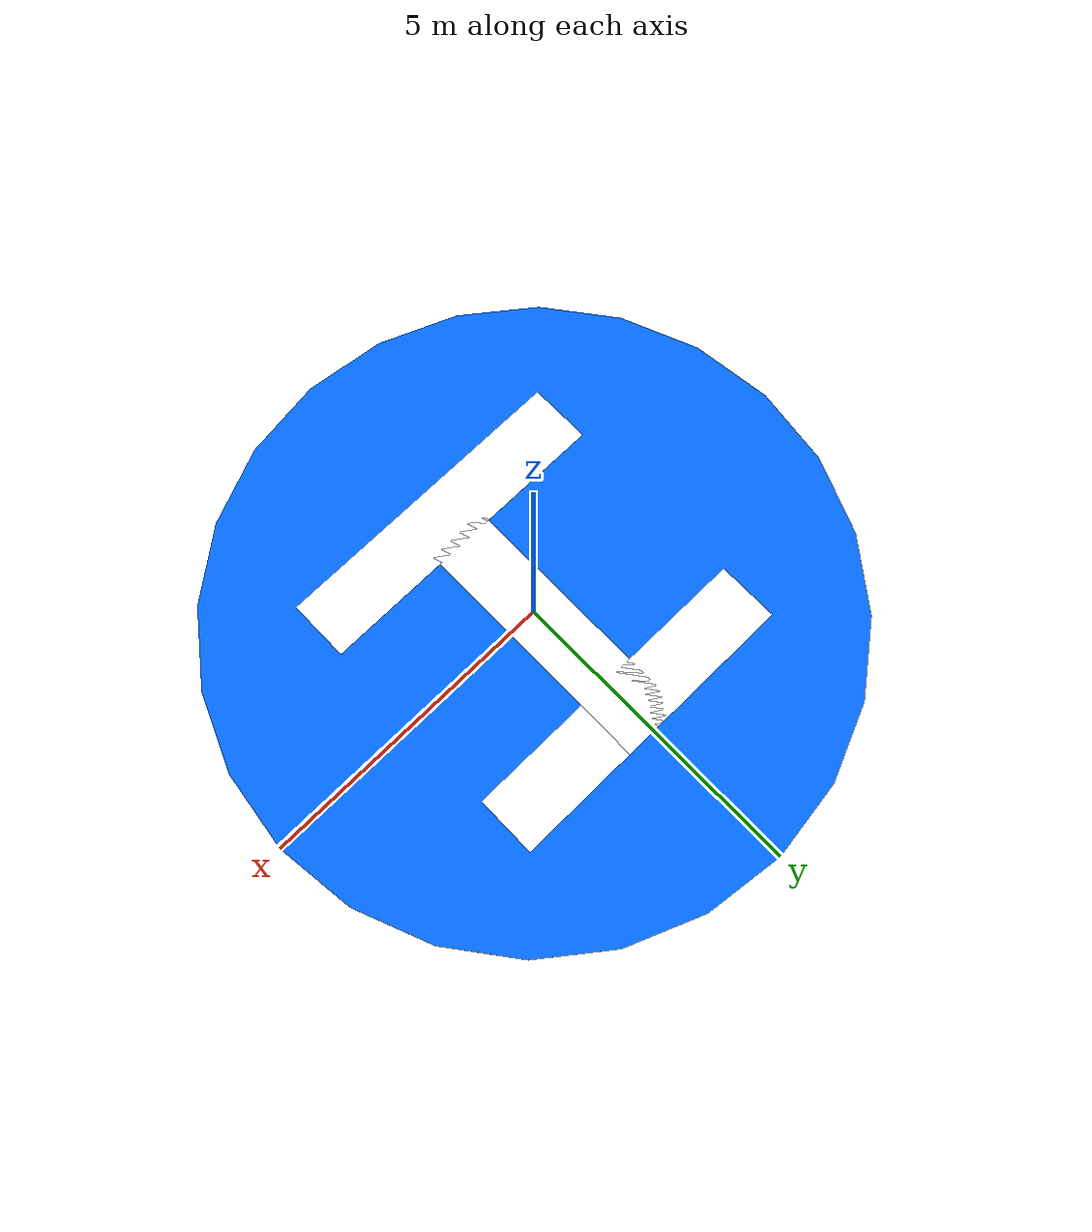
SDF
<?xml version="1.0" ?>
<sdf version="1.7">

<model name="VertiPort">

<static>true</static>

<link name='link'>

<visual name='barra_izq'>
    <pose>0 -2 0.02 0 0 0</pose>
    <geometry>
      <box>
        <size>5 1 0.01</size>
      </box>
    </geometry>
    <material>
      <ambient>1 1 1 1</ambient>
      <diffuse>1 1 1 1</diffuse>
    </material>
</visual>

<visual name='barra_der'>
  <pose>0 2 0.02 0 0 0</pose>
  <geometry>
    <box>
      <size>5 1 .01</size>
    </box>
  </geometry>
  <material>
    <ambient>1 1 1 1</ambient>
    <diffuse>1 1 1 1</diffuse>
  </material>
</visual>

<visual name='travesanho'>
  <pose>0 0 0.02 0 0 0</pose>
  <geometry>
    <box>
      <size>1 5 .01</size>
    </box>
  </geometry>
  <material>
    <ambient>1 1 1 1</ambient>
    <diffuse>1 1 1 1</diffuse>
  </material>
</visual>

<visual name="circulo">
    <pose>0 0 -0.03 0 0 0</pose>
    <geometry>
        <cylinder>
            <radius>5</radius>
            <length>.1</length>
        </cylinder>
    </geometry>
    <material>
        <ambient>0 0.4 1 1</ambient>  <!--color Red Green Blue Alpha [0-1] -->
        <diffuse>0 0.4 1 1</diffuse>
    </material>
</visual>

<collision name="circulo_col">
    <pose>0 0 -0.03 0 0 0</pose>
    <geometry>
        <cylinder>
            <radius>5</radius>
            <length>.1</length>
        </cylinder>
    </geometry>
    <surface>
        <friction>
            <ode>
            <mu>0.5</mu>
            <mu2>0.5</mu2>
            </ode>
        </friction>
    </surface>
</collision>

</link>

</model>

</sdf>
